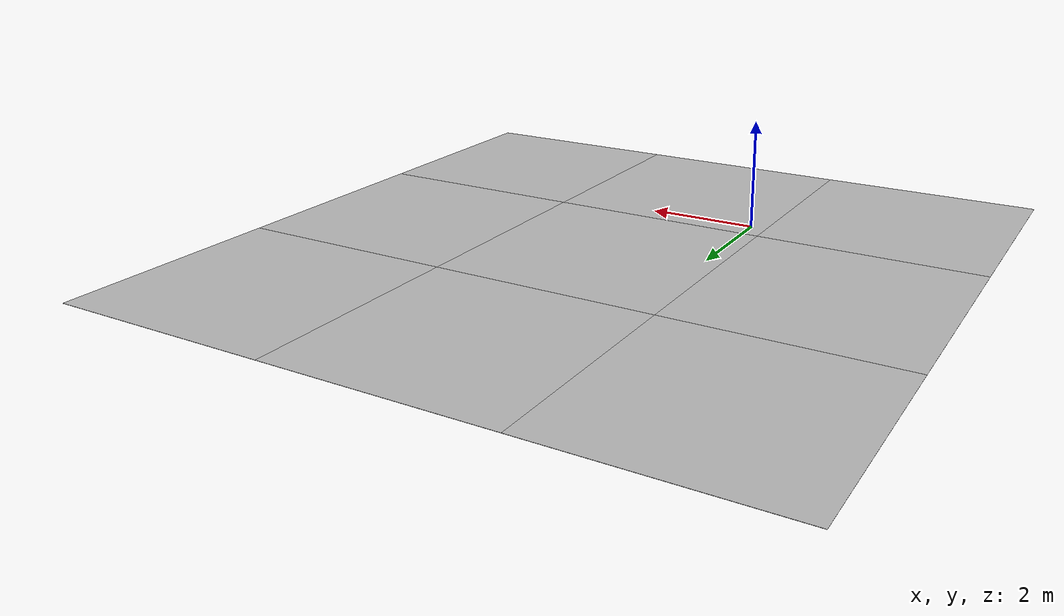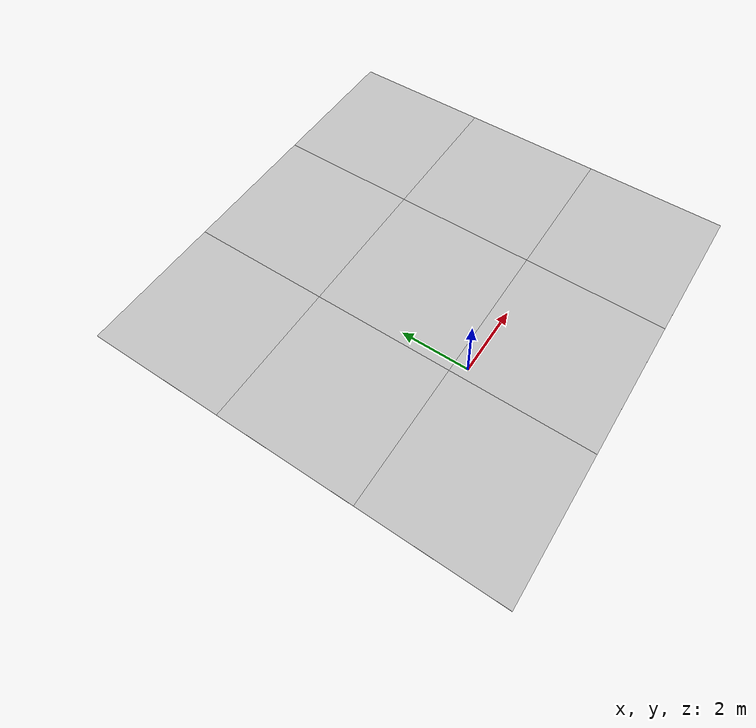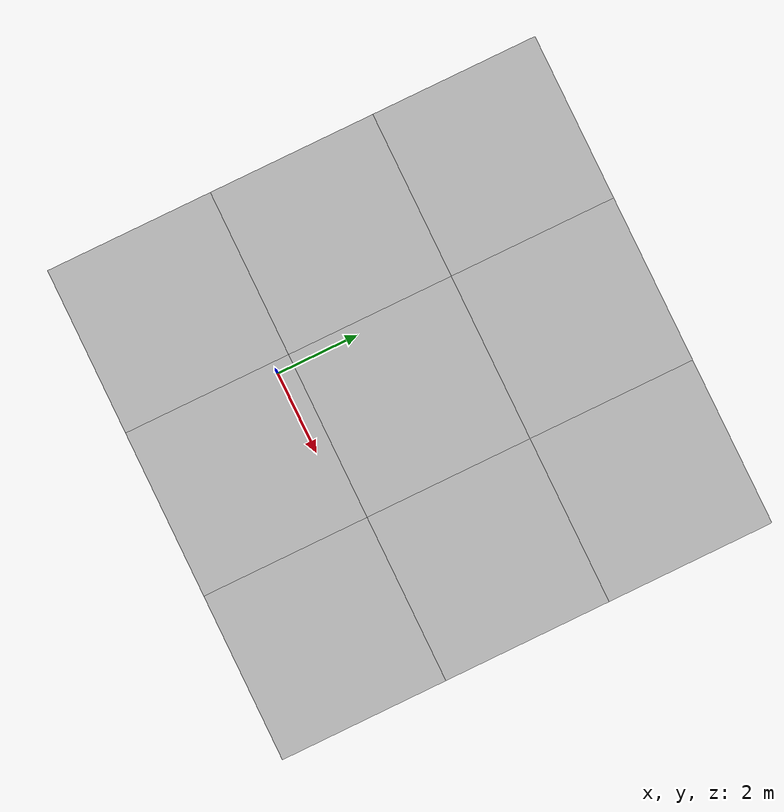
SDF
<sdf version='1.6'><world name='default'>
    <light name='sun_light' type='directional'>
      <pose frame=''>0 0 10 0 -0 0</pose>
      <diffuse>0.5 0.5 0.5 1</diffuse>
      <specular>0.1 0.1 0.1 1</specular>
      <direction>0.1 0.1 -0.9</direction>
      <attenuation>
        <range>20</range>
        <constant>0.5</constant>
        <linear>0.01</linear>
        <quadratic>0.001</quadratic>
      </attenuation>
      <cast_shadows>1</cast_shadows>
    </light>

    <model name='Tile/0-0'>
      <static>1</static>
      <link name='link'>
        <collision name='collision'>
          <geometry>
            <plane>
              <normal>0 0 1</normal>
              <size>4.096 4.096</size>
            </plane>
          </geometry>
          <surface>
            <friction>
              <ode>
                <mu>100</mu>
                <mu2>50</mu2>
              </ode>
              <torsional>
                <ode/>
              </torsional>
            </friction>
            <contact>
              <ode/>
            </contact>
            <bounce/>
          </surface>
          <max_contacts>10</max_contacts>
        </collision>
        <visual name='visual'>
          <cast_shadows>0</cast_shadows>
          <geometry>
            <plane>
              <normal>0 0 1</normal>
              <size>4.096 4.096</size>
            </plane>
          </geometry>
          <material>
            <script>
              <uri>file://materials/scripts</uri>
              <uri>file://materials/textures</uri>
              <name>Tile/58249dba76495bd2adbb5e97705a673568b0ab3ee49a19501d565a1f90f99255</name>
            </script>
          </material>
        </visual>
        <self_collide>0</self_collide>
        <enable_wind>0</enable_wind>
        <kinematic>0</kinematic>
      </link>
      <pose frame=''>-2.3271238694139935 -1.644646132595668 0 0 -0 0</pose>
    </model>

    <model name='Tile/0-1'>
      <static>1</static>
      <link name='link'>
        <collision name='collision'>
          <geometry>
            <plane>
              <normal>0 0 1</normal>
              <size>4.096 4.096</size>
            </plane>
          </geometry>
          <surface>
            <friction>
              <ode>
                <mu>100</mu>
                <mu2>50</mu2>
              </ode>
              <torsional>
                <ode/>
              </torsional>
            </friction>
            <contact>
              <ode/>
            </contact>
            <bounce/>
          </surface>
          <max_contacts>10</max_contacts>
        </collision>
        <visual name='visual'>
          <cast_shadows>0</cast_shadows>
          <geometry>
            <plane>
              <normal>0 0 1</normal>
              <size>4.096 4.096</size>
            </plane>
          </geometry>
          <material>
            <script>
              <uri>file://materials/scripts</uri>
              <uri>file://materials/textures</uri>
              <name>Tile/20aad043a35f43702c20466acef58daaaaa47ba87d6040c0d270c1437eebdba4</name>
            </script>
          </material>
        </visual>
        <self_collide>0</self_collide>
        <enable_wind>0</enable_wind>
        <kinematic>0</kinematic>
      </link>
      <pose frame=''>-2.3271238694139935 2.451353867404332 0 0 -0 0</pose>
    </model>

    <model name='Tile/0-2'>
      <static>1</static>
      <link name='link'>
        <collision name='collision'>
          <geometry>
            <plane>
              <normal>0 0 1</normal>
              <size>4.096 4.096</size>
            </plane>
          </geometry>
          <surface>
            <friction>
              <ode>
                <mu>100</mu>
                <mu2>50</mu2>
              </ode>
              <torsional>
                <ode/>
              </torsional>
            </friction>
            <contact>
              <ode/>
            </contact>
            <bounce/>
          </surface>
          <max_contacts>10</max_contacts>
        </collision>
        <visual name='visual'>
          <cast_shadows>0</cast_shadows>
          <geometry>
            <plane>
              <normal>0 0 1</normal>
              <size>4.096 4.096</size>
            </plane>
          </geometry>
          <material>
            <script>
              <uri>file://materials/scripts</uri>
              <uri>file://materials/textures</uri>
              <name>Tile/5eab350b8220ac9944dbdfa4ac3288c7c17e24c3bf5df0dfcf6173d64dae00a1</name>
            </script>
          </material>
        </visual>
        <self_collide>0</self_collide>
        <enable_wind>0</enable_wind>
        <kinematic>0</kinematic>
      </link>
      <pose frame=''>-2.3271238694139935 6.547353867404333 0 0 -0 0</pose>
    </model>

    <model name='Tile/1-0'>
      <static>1</static>
      <link name='link'>
        <collision name='collision'>
          <geometry>
            <plane>
              <normal>0 0 1</normal>
              <size>4.096 4.096</size>
            </plane>
          </geometry>
          <surface>
            <friction>
              <ode>
                <mu>100</mu>
                <mu2>50</mu2>
              </ode>
              <torsional>
                <ode/>
              </torsional>
            </friction>
            <contact>
              <ode/>
            </contact>
            <bounce/>
          </surface>
          <max_contacts>10</max_contacts>
        </collision>
        <visual name='visual'>
          <cast_shadows>0</cast_shadows>
          <geometry>
            <plane>
              <normal>0 0 1</normal>
              <size>4.096 4.096</size>
            </plane>
          </geometry>
          <material>
            <script>
              <uri>file://materials/scripts</uri>
              <uri>file://materials/textures</uri>
              <name>Tile/0266630d161fff525f95f0ec63aed2fd9e46cf0db7a19bb75573e713995f4ce3</name>
            </script>
          </material>
        </visual>
        <self_collide>0</self_collide>
        <enable_wind>0</enable_wind>
        <kinematic>0</kinematic>
      </link>
      <pose frame=''>1.7688761305860066 -1.644646132595668 0 0 -0 0</pose>
    </model>

    <model name='Tile/1-1'>
      <static>1</static>
      <link name='link'>
        <collision name='collision'>
          <geometry>
            <plane>
              <normal>0 0 1</normal>
              <size>4.096 4.096</size>
            </plane>
          </geometry>
          <surface>
            <friction>
              <ode>
                <mu>100</mu>
                <mu2>50</mu2>
              </ode>
              <torsional>
                <ode/>
              </torsional>
            </friction>
            <contact>
              <ode/>
            </contact>
            <bounce/>
          </surface>
          <max_contacts>10</max_contacts>
        </collision>
        <visual name='visual'>
          <cast_shadows>0</cast_shadows>
          <geometry>
            <plane>
              <normal>0 0 1</normal>
              <size>4.096 4.096</size>
            </plane>
          </geometry>
          <material>
            <script>
              <uri>file://materials/scripts</uri>
              <uri>file://materials/textures</uri>
              <name>Tile/cebb63c8a916e6ae27d935f5c49de258854bb4b4ad030167aab7a35ee194fb5f</name>
            </script>
          </material>
        </visual>
        <self_collide>0</self_collide>
        <enable_wind>0</enable_wind>
        <kinematic>0</kinematic>
      </link>
      <pose frame=''>1.7688761305860066 2.451353867404332 0 0 -0 0</pose>
    </model>

    <model name='Tile/1-2'>
      <static>1</static>
      <link name='link'>
        <collision name='collision'>
          <geometry>
            <plane>
              <normal>0 0 1</normal>
              <size>4.096 4.096</size>
            </plane>
          </geometry>
          <surface>
            <friction>
              <ode>
                <mu>100</mu>
                <mu2>50</mu2>
              </ode>
              <torsional>
                <ode/>
              </torsional>
            </friction>
            <contact>
              <ode/>
            </contact>
            <bounce/>
          </surface>
          <max_contacts>10</max_contacts>
        </collision>
        <visual name='visual'>
          <cast_shadows>0</cast_shadows>
          <geometry>
            <plane>
              <normal>0 0 1</normal>
              <size>4.096 4.096</size>
            </plane>
          </geometry>
          <material>
            <script>
              <uri>file://materials/scripts</uri>
              <uri>file://materials/textures</uri>
              <name>Tile/5eab350b8220ac9944dbdfa4ac3288c7c17e24c3bf5df0dfcf6173d64dae00a1</name>
            </script>
          </material>
        </visual>
        <self_collide>0</self_collide>
        <enable_wind>0</enable_wind>
        <kinematic>0</kinematic>
      </link>
      <pose frame=''>1.7688761305860066 6.547353867404333 0 0 -0 0</pose>
    </model>

    <model name='Tile/2-0'>
      <static>1</static>
      <link name='link'>
        <collision name='collision'>
          <geometry>
            <plane>
              <normal>0 0 1</normal>
              <size>4.096 4.096</size>
            </plane>
          </geometry>
          <surface>
            <friction>
              <ode>
                <mu>100</mu>
                <mu2>50</mu2>
              </ode>
              <torsional>
                <ode/>
              </torsional>
            </friction>
            <contact>
              <ode/>
            </contact>
            <bounce/>
          </surface>
          <max_contacts>10</max_contacts>
        </collision>
        <visual name='visual'>
          <cast_shadows>0</cast_shadows>
          <geometry>
            <plane>
              <normal>0 0 1</normal>
              <size>4.096 4.096</size>
            </plane>
          </geometry>
          <material>
            <script>
              <uri>file://materials/scripts</uri>
              <uri>file://materials/textures</uri>
              <name>Tile/5eab350b8220ac9944dbdfa4ac3288c7c17e24c3bf5df0dfcf6173d64dae00a1</name>
            </script>
          </material>
        </visual>
        <self_collide>0</self_collide>
        <enable_wind>0</enable_wind>
        <kinematic>0</kinematic>
      </link>
      <pose frame=''>5.864876130586007 -1.644646132595668 0 0 -0 0</pose>
    </model>

    <model name='Tile/2-1'>
      <static>1</static>
      <link name='link'>
        <collision name='collision'>
          <geometry>
            <plane>
              <normal>0 0 1</normal>
              <size>4.096 4.096</size>
            </plane>
          </geometry>
          <surface>
            <friction>
              <ode>
                <mu>100</mu>
                <mu2>50</mu2>
              </ode>
              <torsional>
                <ode/>
              </torsional>
            </friction>
            <contact>
              <ode/>
            </contact>
            <bounce/>
          </surface>
          <max_contacts>10</max_contacts>
        </collision>
        <visual name='visual'>
          <cast_shadows>0</cast_shadows>
          <geometry>
            <plane>
              <normal>0 0 1</normal>
              <size>4.096 4.096</size>
            </plane>
          </geometry>
          <material>
            <script>
              <uri>file://materials/scripts</uri>
              <uri>file://materials/textures</uri>
              <name>Tile/5eab350b8220ac9944dbdfa4ac3288c7c17e24c3bf5df0dfcf6173d64dae00a1</name>
            </script>
          </material>
        </visual>
        <self_collide>0</self_collide>
        <enable_wind>0</enable_wind>
        <kinematic>0</kinematic>
      </link>
      <pose frame=''>5.864876130586007 2.451353867404332 0 0 -0 0</pose>
    </model>

    <model name='Tile/2-2'>
      <static>1</static>
      <link name='link'>
        <collision name='collision'>
          <geometry>
            <plane>
              <normal>0 0 1</normal>
              <size>4.096 4.096</size>
            </plane>
          </geometry>
          <surface>
            <friction>
              <ode>
                <mu>100</mu>
                <mu2>50</mu2>
              </ode>
              <torsional>
                <ode/>
              </torsional>
            </friction>
            <contact>
              <ode/>
            </contact>
            <bounce/>
          </surface>
          <max_contacts>10</max_contacts>
        </collision>
        <visual name='visual'>
          <cast_shadows>0</cast_shadows>
          <geometry>
            <plane>
              <normal>0 0 1</normal>
              <size>4.096 4.096</size>
            </plane>
          </geometry>
          <material>
            <script>
              <uri>file://materials/scripts</uri>
              <uri>file://materials/textures</uri>
              <name>Tile/5eab350b8220ac9944dbdfa4ac3288c7c17e24c3bf5df0dfcf6173d64dae00a1</name>
            </script>
          </material>
        </visual>
        <self_collide>0</self_collide>
        <enable_wind>0</enable_wind>
        <kinematic>0</kinematic>
      </link>
      <pose frame=''>5.864876130586007 6.547353867404333 0 0 -0 0</pose>
    </model>
    </world></sdf>
